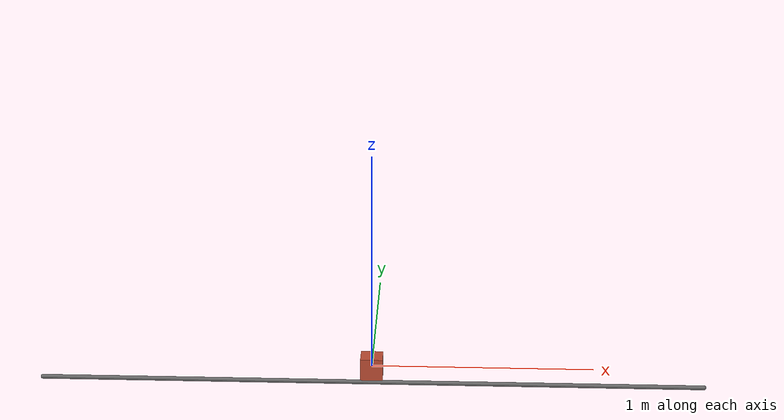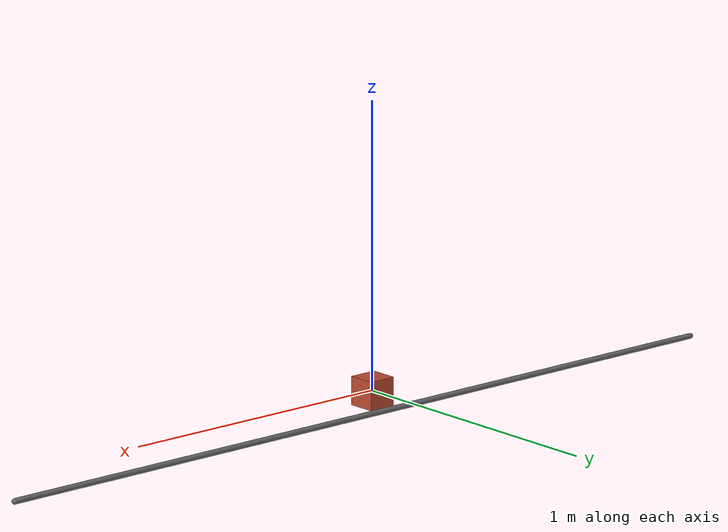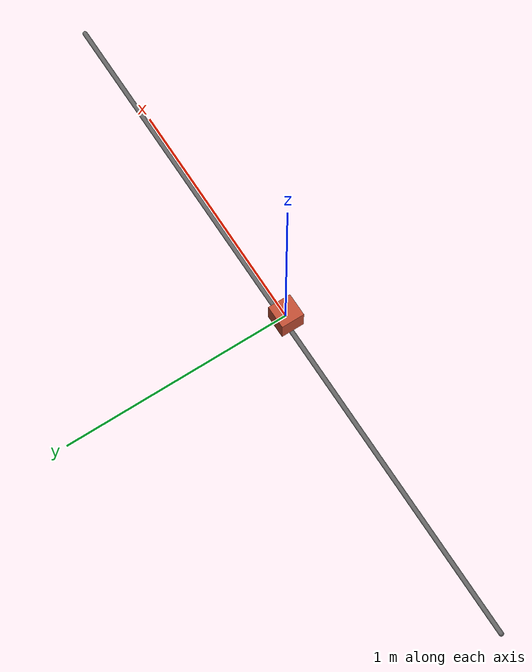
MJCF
<mujoco model="lab03_trajectory_planning">
  <compiler angle="radian"/>
  <option timestep="0.002" gravity="0 0 0"/>

  <worldbody>
    <light name="key" pos="0 -2 2" dir="0 1 -1"/>
    <geom name="rail" type="capsule" fromto="-1.5 0 -0.08 1.5 0 -0.08" size="0.01" rgba="0.4 0.4 0.4 1"/>
    <body name="block" pos="0 0 0">
      <joint name="slider" type="slide" axis="1 0 0" damping="0.8" stiffness="0" springref="0" limited="true" range="-2 2"/>
      <geom name="block_geom" type="box" size="0.05 0.05 0.05" mass="1" rgba="0.75 0.3 0.2 1"/>
    </body>
  </worldbody>

  <actuator>
    <motor name="force_x" joint="slider" gear="1" ctrllimited="true" ctrlrange="-500 500"/>
  </actuator>
</mujoco>
